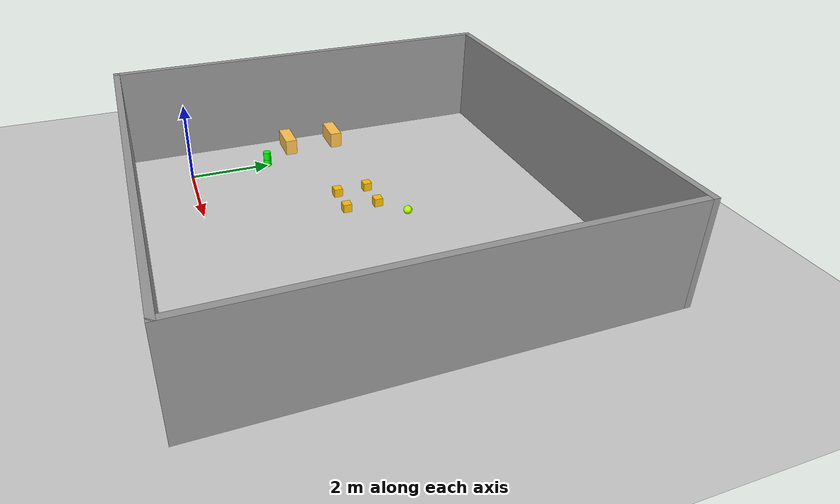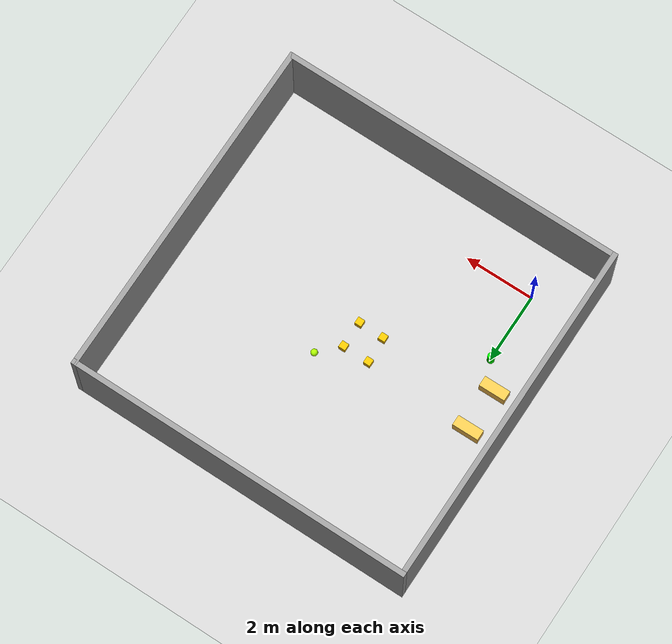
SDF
<sdf version="1.7">
 <world name="default">
  <model name="ground_plane">
   <static>1</static>
   <link name="link">
    <collision name="collision">
     <geometry><plane><normal>0 0 1</normal><size>100 100</size></plane></geometry>
     <surface>
      <contact><collide_bitmask>65535</collide_bitmask></contact>
      <friction><ode><mu>100</mu><mu2>50</mu2></ode></friction>
     </surface>
    </collision>
    <visual name="visual">
     <cast_shadows>0</cast_shadows>
     <geometry><plane><normal>0 0 1</normal><size>100 100</size></plane></geometry>
     <material>
      <script><uri>file://media/materials/scripts/gazebo.material</uri><name>Gazebo/Grey</name></script>
     </material>
    </visual>
   </link>
  </model>
  <model name="walls">
   <pose>3.5 3.5 0 0 -0 0</pose>
   <link name="Wall_2">
    <collision name="Wall_2_Collision">
     <geometry><box><size>10 0.15 2.5</size></box></geometry>
     <pose>0 0 1.25 0 -0 0</pose>
    </collision>
    <visual name="Wall_2_Visual">
     <pose>0 0 1.25 0 -0 0</pose>
     <geometry><box><size>10 0.15 2.5</size></box></geometry>
     <material>
      <script><uri>file://media/materials/scripts/gazebo.material</uri><name>Gazebo/Grey</name></script>
      <ambient>1 1 1 1</ambient>
     </material>
     <meta><layer>0</layer></meta>
    </visual>
    <pose>0 4.925 0 0 -0 3.14159</pose>
   </link>
   <link name="Wall_3">
    <collision name="Wall_3_Collision">
     <geometry><box><size>10 0.15 2.5</size></box></geometry>
     <pose>0 0 1.25 0 -0 0</pose>
    </collision>
    <visual name="Wall_3_Visual">
     <pose>0 0 1.25 0 -0 0</pose>
     <geometry><box><size>10 0.15 2.5</size></box></geometry>
     <material>
      <script><uri>file://media/materials/scripts/gazebo.material</uri><name>Gazebo/Grey</name></script>
      <ambient>1 1 1 1</ambient>
     </material>
     <meta><layer>0</layer></meta>
    </visual>
    <pose>-4.925 0 0 0 -0 -1.5708</pose>
   </link>
   <link name="Wall_5">
    <collision name="Wall_5_Collision">
     <geometry><box><size>10 0.15 2.5</size></box></geometry>
     <pose>0 0 1.25 0 -0 0</pose>
    </collision>
    <visual name="Wall_5_Visual">
     <pose>0 0 1.25 0 -0 0</pose>
     <geometry><box><size>10 0.15 2.5</size></box></geometry>
     <material>
      <script><uri>file://media/materials/scripts/gazebo.material</uri><name>Gazebo/Grey</name></script>
      <ambient>1 1 1 1</ambient>
     </material>
     <meta><layer>0</layer></meta>
    </visual>
    <pose>0 -4.925 0 0 -0 0</pose>
   </link>
   <link name="Wall_6">
    <collision name="Wall_6_Collision">
     <geometry><box><size>10 0.15 2.5</size></box></geometry>
     <pose>0 0 1.25 0 -0 0</pose>
    </collision>
    <visual name="Wall_6_Visual">
     <pose>0 0 1.25 0 -0 0</pose>
     <geometry><box><size>10 0.15 2.5</size></box></geometry>
     <material>
      <script><uri>file://media/materials/scripts/gazebo.material</uri><name>Gazebo/Grey</name></script>
      <ambient>1 1 1 1</ambient>
     </material>
     <meta><layer>0</layer></meta>
    </visual>
    <pose>4.925 0 0 0 -0 1.5708</pose>
   </link>
   <static>1</static>
  </model>
  <model name="Box_15x30">
   <link name="Wall">
    <pose>0 0 0.1985 0 -0 0</pose>
    <inertial>
     <mass>5</mass>
     <inertia><ixx>0.3089</ixx><iyy>0.1022</iyy><izz>0.2797</izz><ixy>0</ixy><ixz>0</ixz><iyz>0</iyz></inertia>
    </inertial>
    <collision name="Wall_Collision"><geometry><box><size>0.296 0.764 0.397</size></box></geometry></collision>
    <visual name="Wall_Visual">
     <geometry><box><size>0.296 0.764 0.397</size></box></geometry>
     <material>
      <script><uri>file://media/materials/scripts/gazebo.material</uri><name>Gazebo/Grey</name></script>
      <ambient>1 0.764706 0.305882 1</ambient>
     </material>
    </visual>
   </link>
   <static>1</static>
   <pose>-0.560762 2.70227 0.120926 0 0 -1.5633</pose>
  </model>
  <model name="Box_15x30_clone">
   <link name="Wall">
    <pose>0 0 0.1985 0 -0 0</pose>
    <inertial>
     <mass>5</mass>
     <inertia><ixx>0.3089</ixx><iyy>0.1022</iyy><izz>0.2797</izz><ixy>0</ixy><ixz>0</ixz><iyz>0</iyz></inertia>
    </inertial>
    <collision name="Wall_Collision"><geometry><box><size>0.296 0.764 0.397</size></box></geometry></collision>
    <visual name="Wall_Visual">
     <geometry><box><size>0.296 0.764 0.397</size></box></geometry>
     <material>
      <script><uri>file://media/materials/scripts/gazebo.material</uri><name>Gazebo/Grey</name></script>
      <ambient>1 0.764706 0.305882 1</ambient>
     </material>
    </visual>
   </link>
   <static>1</static>
   <pose>-0.553817 3.95824 0.140204 0 0 -1.5633</pose>
  </model>
  <model name="cylinder_g">
   <link name="link_0">
    <pose>0 0 0.1 0 -0 0</pose>
    <inertial>
     <mass>1</mass>
     <inertia><ixx>0.145833</ixx><ixy>0</ixy><ixz>0</ixz><iyy>0.145833</iyy><iyz>0</iyz><izz>0.125</izz></inertia>
    </inertial>
    <visual name="visual">
     <geometry><cylinder><radius>0.1</radius><length>0.2</length></cylinder></geometry>
     <material>
      <lighting>1</lighting>
      <script><uri>file://media/materials/scripts/gazebo.material</uri><name>Gazebo/Grey</name></script>
      <ambient>0 1 0 1</ambient>
      <diffuse>0 1 0 1</diffuse>
      <specular>0 0 0 1</specular>
      <emissive>0 0 0 1</emissive>
      <shader type="vertex"><normal_map>__default__</normal_map></shader>
     </material>
    </visual>
    <collision name="collision">
     <geometry><cylinder><radius>0.1</radius><length>0.2</length></cylinder></geometry>
     <surface>
      <friction>
       <ode><mu>1</mu><mu2>1</mu2><fdir1>0 0 0</fdir1><slip1>0</slip1><slip2>0</slip2></ode>
       <torsional>
        <coefficient>1</coefficient>
        <patch_radius>0</patch_radius>
        <surface_radius>0</surface_radius>
        <use_patch_radius>1</use_patch_radius>
        <ode><slip>0</slip></ode>
       </torsional>
      </friction>
      <bounce><restitution_coefficient>0</restitution_coefficient><threshold>1e+06</threshold></bounce>
      <contact>
       <collide_without_contact>0</collide_without_contact>
       <collide_without_contact_bitmask>1</collide_without_contact_bitmask>
       <collide_bitmask>1</collide_bitmask>
       <ode>
        <soft_cfm>0</soft_cfm>
        <soft_erp>0.2</soft_erp>
        <kp>1e+13</kp>
        <kd>1</kd>
        <max_vel>0.01</max_vel>
        <min_depth>0</min_depth>
       </ode>
       <bullet>
        <split_impulse>1</split_impulse>
        <split_impulse_penetration_threshold>-0.01</split_impulse_penetration_threshold>
        <soft_cfm>0</soft_cfm>
        <soft_erp>0.2</soft_erp>
        <kp>1e+13</kp>
        <kd>1</kd>
       </bullet>
      </contact>
     </surface>
    </collision>
   </link>
   <static>1</static>
   <pose>-0.008504 1.99028 0.192879 0 -0 0</pose>
  </model>
  <model name="cylinder_g_clone">
   <link name="link_0">
    <pose>0 0 0.1 0 -0 0</pose>
    <inertial>
     <mass>1</mass>
     <inertia><ixx>0.145833</ixx><ixy>0</ixy><ixz>0</ixz><iyy>0.145833</iyy><iyz>0</iyz><izz>0.125</izz></inertia>
    </inertial>
    <visual name="visual">
     <geometry><cylinder><radius>0.1</radius><length>0.2</length></cylinder></geometry>
     <material>
      <lighting>1</lighting>
      <script><uri>file://media/materials/scripts/gazebo.material</uri><name>Gazebo/Grey</name></script>
      <ambient>0 1 0 1</ambient>
      <diffuse>0 1 0 1</diffuse>
      <specular>0 0 0 1</specular>
      <emissive>0 0 0 1</emissive>
      <shader type="vertex"><normal_map>__default__</normal_map></shader>
     </material>
    </visual>
    <collision name="collision">
     <geometry><cylinder><radius>0.1</radius><length>0.2</length></cylinder></geometry>
     <surface>
      <friction>
       <ode><mu>1</mu><mu2>1</mu2><fdir1>0 0 0</fdir1><slip1>0</slip1><slip2>0</slip2></ode>
       <torsional>
        <coefficient>1</coefficient>
        <patch_radius>0</patch_radius>
        <surface_radius>0</surface_radius>
        <use_patch_radius>1</use_patch_radius>
        <ode><slip>0</slip></ode>
       </torsional>
      </friction>
      <bounce><restitution_coefficient>0</restitution_coefficient><threshold>1e+06</threshold></bounce>
      <contact>
       <collide_without_contact>0</collide_without_contact>
       <collide_without_contact_bitmask>1</collide_without_contact_bitmask>
       <collide_bitmask>1</collide_bitmask>
       <ode>
        <soft_cfm>0</soft_cfm>
        <soft_erp>0.2</soft_erp>
        <kp>1e+13</kp>
        <kd>1</kd>
        <max_vel>0.01</max_vel>
        <min_depth>0</min_depth>
       </ode>
       <bullet>
        <split_impulse>1</split_impulse>
        <split_impulse_penetration_threshold>-0.01</split_impulse_penetration_threshold>
        <soft_cfm>0</soft_cfm>
        <soft_erp>0.2</soft_erp>
        <kp>1e+13</kp>
        <kd>1</kd>
       </bullet>
      </contact>
     </surface>
    </collision>
   </link>
   <static>1</static>
   <pose>-0.008504 1.99028 0 0 -0 0</pose>
  </model>
  <model name="cube_yo">
   <link name="link_2">
    <pose>0 0 0.1 0 -0 0</pose>
    <inertial>
     <mass>1</mass>
     <inertia>
      <ixx>0.166667</ixx>
      <ixy>0</ixy>
      <ixz>0</ixz>
      <iyy>0.166667</iyy>
      <iyz>0</iyz>
      <izz>0.166667</izz>
     </inertia>
    </inertial>
    <visual name="visual">
     <geometry><box><size>0.2 0.2 0.2</size></box></geometry>
     <material>
      <lighting>1</lighting>
      <script><uri>file://media/materials/scripts/gazebo.material</uri><name>Gazebo/Grey</name></script>
      <ambient>1 0.749 0 1</ambient>
      <diffuse>1 0.749 0 1</diffuse>
      <specular>0 0 0 1</specular>
      <emissive>0 0 0 1</emissive>
      <shader type="vertex"><normal_map>__default__</normal_map></shader>
     </material>
    </visual>
    <collision name="collision">
     <geometry><box><size>0.2 0.2 0.2</size></box></geometry>
     <surface>
      <friction>
       <ode><mu>1</mu><mu2>1</mu2><fdir1>0 0 0</fdir1><slip1>0</slip1><slip2>0</slip2></ode>
       <torsional>
        <coefficient>1</coefficient>
        <patch_radius>0</patch_radius>
        <surface_radius>0</surface_radius>
        <use_patch_radius>1</use_patch_radius>
        <ode><slip>0</slip></ode>
       </torsional>
      </friction>
      <bounce><restitution_coefficient>0</restitution_coefficient><threshold>1e+06</threshold></bounce>
      <contact>
       <collide_without_contact>0</collide_without_contact>
       <collide_without_contact_bitmask>1</collide_without_contact_bitmask>
       <collide_bitmask>1</collide_bitmask>
       <ode>
        <soft_cfm>0</soft_cfm>
        <soft_erp>0.2</soft_erp>
        <kp>1e+13</kp>
        <kd>1</kd>
        <max_vel>0.01</max_vel>
        <min_depth>0</min_depth>
       </ode>
       <bullet>
        <split_impulse>1</split_impulse>
        <split_impulse_penetration_threshold>-0.01</split_impulse_penetration_threshold>
        <soft_cfm>0</soft_cfm>
        <soft_erp>0.2</soft_erp>
        <kp>1e+13</kp>
        <kd>1</kd>
       </bullet>
      </contact>
     </surface>
    </collision>
   </link>
   <static>1</static>
   <pose>2.58972 3.12798 0.307027 0 -0 0</pose>
  </model>
  <model name="cube_yo_clone">
   <link name="link_2">
    <pose>0 0 0.1 0 -0 0</pose>
    <inertial>
     <mass>1</mass>
     <inertia>
      <ixx>0.166667</ixx>
      <ixy>0</ixy>
      <ixz>0</ixz>
      <iyy>0.166667</iyy>
      <iyz>0</iyz>
      <izz>0.166667</izz>
     </inertia>
    </inertial>
    <visual name="visual">
     <geometry><box><size>0.2 0.2 0.2</size></box></geometry>
     <material>
      <lighting>1</lighting>
      <script><uri>file://media/materials/scripts/gazebo.material</uri><name>Gazebo/Grey</name></script>
      <ambient>1 0.749 0 1</ambient>
      <diffuse>1 0.749 0 1</diffuse>
      <specular>0 0 0 1</specular>
      <emissive>0 0 0 1</emissive>
      <shader type="vertex"><normal_map>__default__</normal_map></shader>
     </material>
    </visual>
    <collision name="collision">
     <geometry><box><size>0.2 0.2 0.2</size></box></geometry>
     <surface>
      <friction>
       <ode><mu>1</mu><mu2>1</mu2><fdir1>0 0 0</fdir1><slip1>0</slip1><slip2>0</slip2></ode>
       <torsional>
        <coefficient>1</coefficient>
        <patch_radius>0</patch_radius>
        <surface_radius>0</surface_radius>
        <use_patch_radius>1</use_patch_radius>
        <ode><slip>0</slip></ode>
       </torsional>
      </friction>
      <bounce><restitution_coefficient>0</restitution_coefficient><threshold>1e+06</threshold></bounce>
      <contact>
       <collide_without_contact>0</collide_without_contact>
       <collide_without_contact_bitmask>1</collide_without_contact_bitmask>
       <collide_bitmask>1</collide_bitmask>
       <ode>
        <soft_cfm>0</soft_cfm>
        <soft_erp>0.2</soft_erp>
        <kp>1e+13</kp>
        <kd>1</kd>
        <max_vel>0.01</max_vel>
        <min_depth>0</min_depth>
       </ode>
       <bullet>
        <split_impulse>1</split_impulse>
        <split_impulse_penetration_threshold>-0.01</split_impulse_penetration_threshold>
        <soft_cfm>0</soft_cfm>
        <soft_erp>0.2</soft_erp>
        <kp>1e+13</kp>
        <kd>1</kd>
       </bullet>
      </contact>
     </surface>
    </collision>
   </link>
   <static>1</static>
   <pose>3.32286 3.11605 0.307027 0 -0 0</pose>
  </model>
  <model name="cube_yo_clone_0">
   <link name="link_2">
    <pose>0 0 0.1 0 -0 0</pose>
    <inertial>
     <mass>1</mass>
     <inertia>
      <ixx>0.166667</ixx>
      <ixy>0</ixy>
      <ixz>0</ixz>
      <iyy>0.166667</iyy>
      <iyz>0</iyz>
      <izz>0.166667</izz>
     </inertia>
    </inertial>
    <visual name="visual">
     <geometry><box><size>0.2 0.2 0.2</size></box></geometry>
     <material>
      <lighting>1</lighting>
      <script><uri>file://media/materials/scripts/gazebo.material</uri><name>Gazebo/Grey</name></script>
      <ambient>1 0.749 0 1</ambient>
      <diffuse>1 0.749 0 1</diffuse>
      <specular>0 0 0 1</specular>
      <emissive>0 0 0 1</emissive>
      <shader type="vertex"><normal_map>__default__</normal_map></shader>
     </material>
    </visual>
    <collision name="collision">
     <geometry><box><size>0.2 0.2 0.2</size></box></geometry>
     <surface>
      <friction>
       <ode><mu>1</mu><mu2>1</mu2><fdir1>0 0 0</fdir1><slip1>0</slip1><slip2>0</slip2></ode>
       <torsional>
        <coefficient>1</coefficient>
        <patch_radius>0</patch_radius>
        <surface_radius>0</surface_radius>
        <use_patch_radius>1</use_patch_radius>
        <ode><slip>0</slip></ode>
       </torsional>
      </friction>
      <bounce><restitution_coefficient>0</restitution_coefficient><threshold>1e+06</threshold></bounce>
      <contact>
       <collide_without_contact>0</collide_without_contact>
       <collide_without_contact_bitmask>1</collide_without_contact_bitmask>
       <collide_bitmask>1</collide_bitmask>
       <ode>
        <soft_cfm>0</soft_cfm>
        <soft_erp>0.2</soft_erp>
        <kp>1e+13</kp>
        <kd>1</kd>
        <max_vel>0.01</max_vel>
        <min_depth>0</min_depth>
       </ode>
       <bullet>
        <split_impulse>1</split_impulse>
        <split_impulse_penetration_threshold>-0.01</split_impulse_penetration_threshold>
        <soft_cfm>0</soft_cfm>
        <soft_erp>0.2</soft_erp>
        <kp>1e+13</kp>
        <kd>1</kd>
       </bullet>
      </contact>
     </surface>
    </collision>
   </link>
   <static>1</static>
   <pose>3.31893 3.87743 0.307027 0 -0 0</pose>
  </model>
  <model name="cube_yo_clone_1">
   <link name="link_2">
    <pose>0 0 0.1 0 -0 0</pose>
    <inertial>
     <mass>1</mass>
     <inertia>
      <ixx>0.166667</ixx>
      <ixy>0</ixy>
      <ixz>0</ixz>
      <iyy>0.166667</iyy>
      <iyz>0</iyz>
      <izz>0.166667</izz>
     </inertia>
    </inertial>
    <visual name="visual">
     <geometry><box><size>0.2 0.2 0.2</size></box></geometry>
     <material>
      <lighting>1</lighting>
      <script><uri>file://media/materials/scripts/gazebo.material</uri><name>Gazebo/Grey</name></script>
      <ambient>1 0.749 0 1</ambient>
      <diffuse>1 0.749 0 1</diffuse>
      <specular>0 0 0 1</specular>
      <emissive>0 0 0 1</emissive>
      <shader type="vertex"><normal_map>__default__</normal_map></shader>
     </material>
    </visual>
    <collision name="collision">
     <geometry><box><size>0.2 0.2 0.2</size></box></geometry>
     <surface>
      <friction>
       <ode><mu>1</mu><mu2>1</mu2><fdir1>0 0 0</fdir1><slip1>0</slip1><slip2>0</slip2></ode>
       <torsional>
        <coefficient>1</coefficient>
        <patch_radius>0</patch_radius>
        <surface_radius>0</surface_radius>
        <use_patch_radius>1</use_patch_radius>
        <ode><slip>0</slip></ode>
       </torsional>
      </friction>
      <bounce><restitution_coefficient>0</restitution_coefficient><threshold>1e+06</threshold></bounce>
      <contact>
       <collide_without_contact>0</collide_without_contact>
       <collide_without_contact_bitmask>1</collide_without_contact_bitmask>
       <collide_bitmask>1</collide_bitmask>
       <ode>
        <soft_cfm>0</soft_cfm>
        <soft_erp>0.2</soft_erp>
        <kp>1e+13</kp>
        <kd>1</kd>
        <max_vel>0.01</max_vel>
        <min_depth>0</min_depth>
       </ode>
       <bullet>
        <split_impulse>1</split_impulse>
        <split_impulse_penetration_threshold>-0.01</split_impulse_penetration_threshold>
        <soft_cfm>0</soft_cfm>
        <soft_erp>0.2</soft_erp>
        <kp>1e+13</kp>
        <kd>1</kd>
       </bullet>
      </contact>
     </surface>
    </collision>
   </link>
   <static>1</static>
   <pose>2.55351 3.87707 0.307027 0 -0 0</pose>
  </model>
  <model name="sphere_gy">
   <link name="link_1">
    <pose>0 0 0.1 0 -0 0</pose>
    <inertial>
     <mass>1</mass>
     <inertia><ixx>0.1</ixx><ixy>0</ixy><ixz>0</ixz><iyy>0.1</iyy><iyz>0</iyz><izz>0.1</izz></inertia>
    </inertial>
    <visual name="visual">
     <geometry><sphere><radius>0.1</radius></sphere></geometry>
     <material>
      <lighting>1</lighting>
      <script><uri>file://media/materials/scripts/gazebo.material</uri><name>Gazebo/Grey</name></script>
      <ambient>0.675 1 0 1</ambient>
      <diffuse>0.675 1 0 1</diffuse>
      <specular>0 0 0 1</specular>
      <emissive>0 0 0 1</emissive>
      <shader type="vertex"><normal_map>__default__</normal_map></shader>
     </material>
    </visual>
    <collision name="collision">
     <geometry><sphere><radius>0.1</radius></sphere></geometry>
     <surface>
      <friction>
       <ode><mu>1</mu><mu2>1</mu2><fdir1>0 0 0</fdir1><slip1>0</slip1><slip2>0</slip2></ode>
       <torsional>
        <coefficient>1</coefficient>
        <patch_radius>0</patch_radius>
        <surface_radius>0</surface_radius>
        <use_patch_radius>1</use_patch_radius>
        <ode><slip>0</slip></ode>
       </torsional>
      </friction>
      <bounce><restitution_coefficient>0</restitution_coefficient><threshold>1e+06</threshold></bounce>
      <contact>
       <collide_without_contact>0</collide_without_contact>
       <collide_without_contact_bitmask>1</collide_without_contact_bitmask>
       <collide_bitmask>1</collide_bitmask>
       <ode>
        <soft_cfm>0</soft_cfm>
        <soft_erp>0.2</soft_erp>
        <kp>1e+13</kp>
        <kd>1</kd>
        <max_vel>0.01</max_vel>
        <min_depth>0</min_depth>
       </ode>
       <bullet>
        <split_impulse>1</split_impulse>
        <split_impulse_penetration_threshold>-0.01</split_impulse_penetration_threshold>
        <soft_cfm>0</soft_cfm>
        <soft_erp>0.2</soft_erp>
        <kp>1e+13</kp>
        <kd>1</kd>
       </bullet>
      </contact>
     </surface>
    </collision>
   </link>
   <static>1</static>
   <pose>3.86925 4.42282 0.271148 0 -0 0</pose>
  </model>
 </world>
</sdf>
